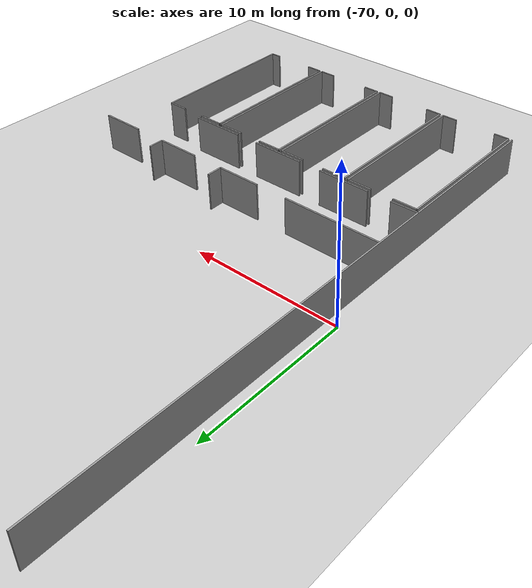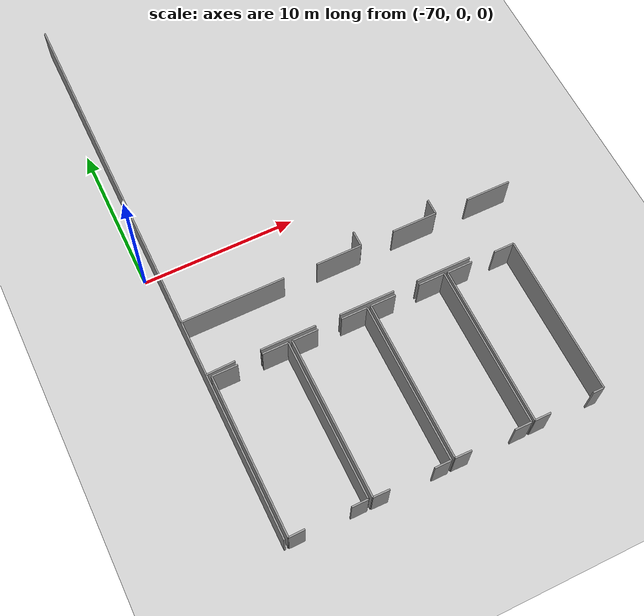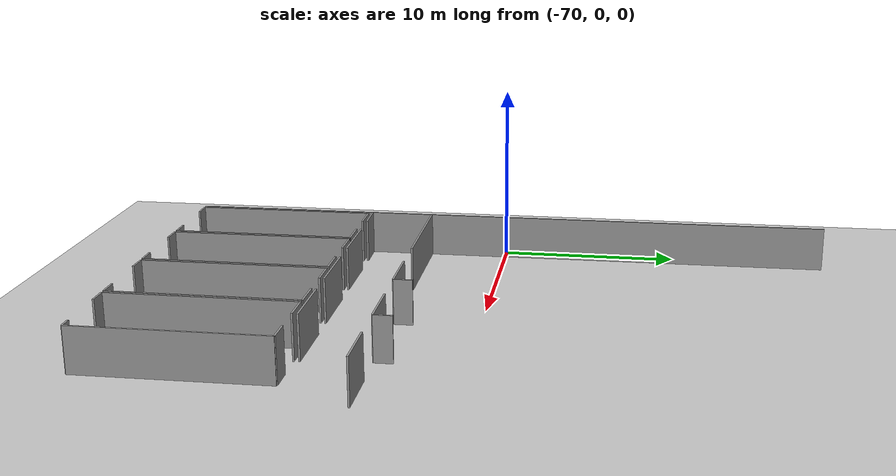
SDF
<sdf version="1.6">
 <world name="default">
  <model name="ground_plane">
   <static>1</static>
   <link name="link">
    <collision name="collision">
     <geometry><plane><normal>0 0 1</normal><size>100 100</size></plane></geometry>
     <surface><friction><ode><mu>100</mu><mu2>50</mu2></ode></friction></surface>
    </collision>
    <visual name="visual">
     <cast_shadows>0</cast_shadows>
     <geometry><plane><normal>0 0 1</normal><size>100 100</size></plane></geometry>
     <material>
      <script><uri>file://media/materials/scripts/gazebo.material</uri><name>Gazebo/Grey</name></script>
     </material>
    </visual>
   </link>
  </model>
  <model name="50055641">
   <static>1</static>
   <link name="Wall_13">
    <collision name="Wall_13_Collision">
     <geometry><box><size>6.66924805444 0.1 2.5</size></box></geometry>
     <pose>3.33462402722 0 1.25 0 0 0</pose>
    </collision>
    <visual name="Wall_13_Visual">
     <pose>3.33462402722 0 1.25 0 0 0</pose>
     <geometry><box><size>6.66924805444 0.1 2.5</size></box></geometry>
     <material>
      <script><uri>file://media/materials/scripts/gazebo.material</uri><name>Gazebo/Grey</name></script>
      <ambient>1 1 1 1</ambient>
     </material>
    </visual>
    <pose>0.0 -23.2500095215 0 0 0 0.0</pose>
   </link>
   <link name="Wall_18">
    <collision name="Wall_18_Collision">
     <geometry><box><size>2.97578996813 0.1 2.5</size></box></geometry>
     <pose>1.48789498407 0 1.25 0 0 0</pose>
    </collision>
    <visual name="Wall_18_Visual">
     <pose>1.48789498407 0 1.25 0 0 0</pose>
     <geometry><box><size>2.97578996813 0.1 2.5</size></box></geometry>
     <material>
      <script><uri>file://media/materials/scripts/gazebo.material</uri><name>Gazebo/Grey</name></script>
      <ambient>1 1 1 1</ambient>
     </material>
    </visual>
    <pose>8.85792634158 -23.2691794995 0 0 0 0.0</pose>
   </link>
   <link name="Wall_19">
    <collision name="Wall_19_Collision">
     <geometry><box><size>1.02718074369 0.1 2.5</size></box></geometry>
     <pose>0.513590371847 0 1.25 0 0 0</pose>
    </collision>
    <visual name="Wall_19_Visual">
     <pose>0.513590371847 0 1.25 0 0 0</pose>
     <geometry><box><size>1.02718074369 0.1 2.5</size></box></geometry>
     <material>
      <script><uri>file://media/materials/scripts/gazebo.material</uri><name>Gazebo/Grey</name></script>
      <ambient>1 1 1 1</ambient>
     </material>
    </visual>
    <pose>11.8337163097 -23.2691794995 0 0 0 1.57079632679</pose>
   </link>
   <link name="Wall_23">
    <collision name="Wall_23_Collision">
     <geometry><box><size>2.94709847783 0.1 2.5</size></box></geometry>
     <pose>1.47354923891 0 1.25 0 0 0</pose>
    </collision>
    <visual name="Wall_23_Visual">
     <pose>1.47354923891 0 1.25 0 0 0</pose>
     <geometry><box><size>2.94709847783 0.1 2.5</size></box></geometry>
     <material>
      <script><uri>file://media/materials/scripts/gazebo.material</uri><name>Gazebo/Grey</name></script>
      <ambient>1 1 1 1</ambient>
     </material>
    </visual>
    <pose>14.0320430626 -23.2596579873 0 0 0 0.0</pose>
   </link>
   <link name="Wall_24">
    <collision name="Wall_24_Collision">
     <geometry><box><size>1.00801076566 0.1 2.5</size></box></geometry>
     <pose>0.504005382828 0 1.25 0 0 0</pose>
    </collision>
    <visual name="Wall_24_Visual">
     <pose>0.504005382828 0 1.25 0 0 0</pose>
     <geometry><box><size>1.00801076566 0.1 2.5</size></box></geometry>
     <material>
      <script><uri>file://media/materials/scripts/gazebo.material</uri><name>Gazebo/Grey</name></script>
      <ambient>1 1 1 1</ambient>
     </material>
    </visual>
    <pose>16.9791415405 -23.2596579873 0 0 0 1.57079632679</pose>
   </link>
   <link name="Wall_28">
    <collision name="Wall_28_Collision">
     <geometry><box><size>2.94760629182 0.1 2.5</size></box></geometry>
     <pose>1.47380314591 0 1.25 0 0 0</pose>
    </collision>
    <visual name="Wall_28_Visual">
     <pose>1.47380314591 0 1.25 0 0 0</pose>
     <geometry><box><size>2.94760629182 0.1 2.5</size></box></geometry>
     <material>
      <script><uri>file://media/materials/scripts/gazebo.material</uri><name>Gazebo/Grey</name></script>
      <ambient>1 1 1 1</ambient>
     </material>
    </visual>
    <pose>19.2008277368 -23.2658787086 0 0 0 0.0</pose>
   </link>
   <link name="Wall_65">
    <collision name="Wall_65_Collision">
     <geometry><box><size>3.58110424152 0.1 2.5</size></box></geometry>
     <pose>1.79055212076 0 1.25 0 0 0</pose>
    </collision>
    <visual name="Wall_65_Visual">
     <pose>1.79055212076 0 1.25 0 0 0</pose>
     <geometry><box><size>3.58110424152 0.1 2.5</size></box></geometry>
     <material>
      <script><uri>file://media/materials/scripts/gazebo.material</uri><name>Gazebo/Grey</name></script>
      <ambient>1 1 1 1</ambient>
     </material>
    </visual>
    <pose>17.3555586589 -26.8581548579 0 0 0 3.14159265359</pose>
   </link>
   <link name="Wall_66">
    <collision name="Wall_66_Collision">
     <geometry><box><size>3.59989335906 0.1 2.5</size></box></geometry>
     <pose>1.79994667953 0 1.25 0 0 0</pose>
    </collision>
    <visual name="Wall_66_Visual">
     <pose>1.79994667953 0 1.25 0 0 0</pose>
     <geometry><box><size>3.59989335906 0.1 2.5</size></box></geometry>
     <material>
      <script><uri>file://media/materials/scripts/gazebo.material</uri><name>Gazebo/Grey</name></script>
      <ambient>1 1 1 1</ambient>
     </material>
    </visual>
    <pose>12.2177506379 -26.8581548579 0 0 0 3.14159265359</pose>
   </link>
   <link name="Wall_67">
    <collision name="Wall_67_Collision">
     <geometry><box><size>3.57691477612 0.1 2.5</size></box></geometry>
     <pose>1.78845738806 0 1.25 0 0 0</pose>
    </collision>
    <visual name="Wall_67_Visual">
     <pose>1.78845738806 0 1.25 0 0 0</pose>
     <geometry><box><size>3.57691477612 0.1 2.5</size></box></geometry>
     <material>
      <script><uri>file://media/materials/scripts/gazebo.material</uri><name>Gazebo/Grey</name></script>
      <ambient>1 1 1 1</ambient>
     </material>
    </visual>
    <pose>7.04401477739 -26.8581548579 0 0 0 3.14159265359</pose>
   </link>
   <link name="Wall_68">
    <collision name="Wall_68_Collision">
     <geometry><box><size>1.84146440723 0.1 2.5</size></box></geometry>
     <pose>0.920732203613 0 1.25 0 0 0</pose>
    </collision>
    <visual name="Wall_68_Visual">
     <pose>0.920732203613 0 1.25 0 0 0</pose>
     <geometry><box><size>1.84146440723 0.1 2.5</size></box></geometry>
     <material>
      <script><uri>file://media/materials/scripts/gazebo.material</uri><name>Gazebo/Grey</name></script>
      <ambient>1 1 1 1</ambient>
     </material>
    </visual>
    <pose>1.84082570554 -26.8581548579 0 0 0 -3.11525391834</pose>
   </link>
   <link name="Wall_178">
    <collision name="Wall_178_Collision">
     <geometry><box><size>10.3222079752 0.1 2.5</size></box></geometry>
     <pose>5.16110398761 0 1.25 0 0 0</pose>
    </collision>
    <visual name="Wall_178_Visual">
     <pose>5.16110398761 0 1.25 0 0 0</pose>
     <geometry><box><size>10.3222079752 0.1 2.5</size></box></geometry>
     <material>
      <script><uri>file://media/materials/scripts/gazebo.material</uri><name>Gazebo/Grey</name></script>
      <ambient>1 1 1 1</ambient>
     </material>
    </visual>
    <pose>15.692721756 -37.4764183879 0 0 0 1.57079632679</pose>
   </link>
   <link name="Wall_179">
    <collision name="Wall_179_Collision">
     <geometry><box><size>1.6644872983 0.1 2.5</size></box></geometry>
     <pose>0.832243649151 0 1.25 0 0 0</pose>
    </collision>
    <visual name="Wall_179_Visual">
     <pose>0.832243649151 0 1.25 0 0 0</pose>
     <geometry><box><size>1.6644872983 0.1 2.5</size></box></geometry>
     <material>
      <script><uri>file://media/materials/scripts/gazebo.material</uri><name>Gazebo/Grey</name></script>
      <ambient>1 1 1 1</ambient>
     </material>
    </visual>
    <pose>15.692721756 -27.1542104127 0 0 0 0.0</pose>
   </link>
   <link name="Wall_180">
    <collision name="Wall_180_Collision">
     <geometry><box><size>1.32463278701 0.1 2.5</size></box></geometry>
     <pose>0.662316393505 0 1.25 0 0 0</pose>
    </collision>
    <visual name="Wall_180_Visual">
     <pose>0.662316393505 0 1.25 0 0 0</pose>
     <geometry><box><size>1.32463278701 0.1 2.5</size></box></geometry>
     <material>
      <script><uri>file://media/materials/scripts/gazebo.material</uri><name>Gazebo/Grey</name></script>
      <ambient>1 1 1 1</ambient>
     </material>
    </visual>
    <pose>18.9182292526 -27.1542104127 0 0 0 0.0</pose>
   </link>
   <link name="Wall_181">
    <collision name="Wall_181_Collision">
     <geometry><box><size>10.3236044637 0.1 2.5</size></box></geometry>
     <pose>5.16180223184 0 1.25 0 0 0</pose>
    </collision>
    <visual name="Wall_181_Visual">
     <pose>5.16180223184 0 1.25 0 0 0</pose>
     <geometry><box><size>10.3236044637 0.1 2.5</size></box></geometry>
     <material>
      <script><uri>file://media/materials/scripts/gazebo.material</uri><name>Gazebo/Grey</name></script>
      <ambient>1 1 1 1</ambient>
     </material>
    </visual>
    <pose>20.2428620396 -27.1542104127 0 0 0 -1.57079632679</pose>
   </link>
   <link name="Wall_182">
    <collision name="Wall_182_Collision">
     <geometry><box><size>0.704591907984 0.1 2.5</size></box></geometry>
     <pose>0.352295953992 0 1.25 0 0 0</pose>
    </collision>
    <visual name="Wall_182_Visual">
     <pose>0.352295953992 0 1.25 0 0 0</pose>
     <geometry><box><size>0.704591907984 0.1 2.5</size></box></geometry>
     <material>
      <script><uri>file://media/materials/scripts/gazebo.material</uri><name>Gazebo/Grey</name></script>
      <ambient>1 1 1 1</ambient>
     </material>
    </visual>
    <pose>20.2428620396 -37.4778148764 0 0 0 3.14159265359</pose>
   </link>
   <link name="Wall_183">
    <collision name="Wall_183_Collision">
     <geometry><box><size>1.03873445064 0.1 2.5</size></box></geometry>
     <pose>0.519367225322 0 1.25 0 0 0</pose>
    </collision>
    <visual name="Wall_183_Visual">
     <pose>0.519367225322 0 1.25 0 0 0</pose>
     <geometry><box><size>1.03873445064 0.1 2.5</size></box></geometry>
     <material>
      <script><uri>file://media/materials/scripts/gazebo.material</uri><name>Gazebo/Grey</name></script>
      <ambient>1 1 1 1</ambient>
     </material>
    </visual>
    <pose>16.7314552679 -37.4778148764 0 0 0 3.14024823983</pose>
   </link>
   <link name="Wall_184">
    <collision name="Wall_184_Collision">
     <geometry><box><size>10.3319833945 0.1 2.5</size></box></geometry>
     <pose>5.16599169724 0 1.25 0 0 0</pose>
    </collision>
    <visual name="Wall_184_Visual">
     <pose>5.16599169724 0 1.25 0 0 0</pose>
     <geometry><box><size>10.3319833945 0.1 2.5</size></box></geometry>
     <material>
      <script><uri>file://media/materials/scripts/gazebo.material</uri><name>Gazebo/Grey</name></script>
      <ambient>1 1 1 1</ambient>
     </material>
    </visual>
    <pose>10.537775013 -37.4572484099 0 0 0 1.57079632679</pose>
   </link>
   <link name="Wall_185">
    <collision name="Wall_185_Collision">
     <geometry><box><size>1.63401845904 0.1 2.5</size></box></geometry>
     <pose>0.817009229519 0 1.25 0 0 0</pose>
    </collision>
    <visual name="Wall_185_Visual">
     <pose>0.817009229519 0 1.25 0 0 0</pose>
     <geometry><box><size>1.63401845904 0.1 2.5</size></box></geometry>
     <material>
      <script><uri>file://media/materials/scripts/gazebo.material</uri><name>Gazebo/Grey</name></script>
      <ambient>1 1 1 1</ambient>
     </material>
    </visual>
    <pose>10.537775013 -27.1252650154 0 0 0 0.0</pose>
   </link>
   <link name="Wall_186">
    <collision name="Wall_186_Collision">
     <geometry><box><size>1.70866711524 0.1 2.5</size></box></geometry>
     <pose>0.854333557618 0 1.25 0 0 0</pose>
    </collision>
    <visual name="Wall_186_Visual">
     <pose>0.854333557618 0 1.25 0 0 0</pose>
     <geometry><box><size>1.70866711524 0.1 2.5</size></box></geometry>
     <material>
      <script><uri>file://media/materials/scripts/gazebo.material</uri><name>Gazebo/Grey</name></script>
      <ambient>1 1 1 1</ambient>
     </material>
    </visual>
    <pose>13.7632825096 -27.1252650154 0 0 0 0.0</pose>
   </link>
   <link name="Wall_187">
    <collision name="Wall_187_Collision">
     <geometry><box><size>10.350772512 0.1 2.5</size></box></geometry>
     <pose>5.17538625601 0 1.25 0 0 0</pose>
    </collision>
    <visual name="Wall_187_Visual">
     <pose>5.17538625601 0 1.25 0 0 0</pose>
     <geometry><box><size>10.350772512 0.1 2.5</size></box></geometry>
     <material>
      <script><uri>file://media/materials/scripts/gazebo.material</uri><name>Gazebo/Grey</name></script>
      <ambient>1 1 1 1</ambient>
     </material>
    </visual>
    <pose>15.4719496249 -27.1252650154 0 0 0 -1.57079632679</pose>
   </link>
   <link name="Wall_188">
    <collision name="Wall_188_Collision">
     <geometry><box><size>1.08811842222 0.1 2.5</size></box></geometry>
     <pose>0.544059211111 0 1.25 0 0 0</pose>
    </collision>
    <visual name="Wall_188_Visual">
     <pose>0.544059211111 0 1.25 0 0 0</pose>
     <geometry><box><size>1.08811842222 0.1 2.5</size></box></geometry>
     <material>
      <script><uri>file://media/materials/scripts/gazebo.material</uri><name>Gazebo/Grey</name></script>
      <ambient>1 1 1 1</ambient>
     </material>
    </visual>
    <pose>15.4719496249 -37.4760375275 0 0 0 3.14159265359</pose>
   </link>
   <link name="Wall_189">
    <collision name="Wall_189_Collision">
     <geometry><box><size>1.06657488458 0.1 2.5</size></box></geometry>
     <pose>0.53328744229 0 1.25 0 0 0</pose>
    </collision>
    <visual name="Wall_189_Visual">
     <pose>0.53328744229 0 1.25 0 0 0</pose>
     <geometry><box><size>1.06657488458 0.1 2.5</size></box></geometry>
     <material>
      <script><uri>file://media/materials/scripts/gazebo.material</uri><name>Gazebo/Grey</name></script>
      <ambient>1 1 1 1</ambient>
     </material>
    </visual>
    <pose>11.6041843873 -37.4760375275 0 0 0 3.1239754288</pose>
   </link>
   <link name="Wall_190">
    <collision name="Wall_190_Collision">
     <geometry><box><size>10.3319833945 0.1 2.5</size></box></geometry>
     <pose>5.16599169724 0 1.25 0 0 0</pose>
    </collision>
    <visual name="Wall_190_Visual">
     <pose>5.16599169724 0 1.25 0 0 0</pose>
     <geometry><box><size>10.3319833945 0.1 2.5</size></box></geometry>
     <material>
      <script><uri>file://media/materials/scripts/gazebo.material</uri><name>Gazebo/Grey</name></script>
      <ambient>1 1 1 1</ambient>
     </material>
    </visual>
    <pose>5.38282827 -37.4572484099 0 0 0 1.57079632679</pose>
   </link>
   <link name="Wall_191">
    <collision name="Wall_191_Collision">
     <geometry><box><size>1.66372557732 0.1 2.5</size></box></geometry>
     <pose>0.831862788661 0 1.25 0 0 0</pose>
    </collision>
    <visual name="Wall_191_Visual">
     <pose>0.831862788661 0 1.25 0 0 0</pose>
     <geometry><box><size>1.66372557732 0.1 2.5</size></box></geometry>
     <material>
      <script><uri>file://media/materials/scripts/gazebo.material</uri><name>Gazebo/Grey</name></script>
      <ambient>1 1 1 1</ambient>
     </material>
    </visual>
    <pose>5.38282827 -27.1252650154 0 0 0 0.0</pose>
   </link>
   <link name="Wall_192">
    <collision name="Wall_192_Collision">
     <geometry><box><size>1.70117685892 0.1 2.5</size></box></geometry>
     <pose>0.850588429458 0 1.25 0 0 0</pose>
    </collision>
    <visual name="Wall_192_Visual">
     <pose>0.850588429458 0 1.25 0 0 0</pose>
     <geometry><box><size>1.70117685892 0.1 2.5</size></box></geometry>
     <material>
      <script><uri>file://media/materials/scripts/gazebo.material</uri><name>Gazebo/Grey</name></script>
      <ambient>1 1 1 1</ambient>
     </material>
    </visual>
    <pose>8.59475174244 -27.1252650154 0 0 0 0.0</pose>
   </link>
   <link name="Wall_193">
    <collision name="Wall_193_Collision">
     <geometry><box><size>10.3511533725 0.1 2.5</size></box></geometry>
     <pose>5.17557668626 0 1.25 0 0 0</pose>
    </collision>
    <visual name="Wall_193_Visual">
     <pose>5.17557668626 0 1.25 0 0 0</pose>
     <geometry><box><size>10.3511533725 0.1 2.5</size></box></geometry>
     <material>
      <script><uri>file://media/materials/scripts/gazebo.material</uri><name>Gazebo/Grey</name></script>
      <ambient>1 1 1 1</ambient>
     </material>
    </visual>
    <pose>10.2959286014 -27.1252650154 0 0 0 -1.57079632679</pose>
   </link>
   <link name="Wall_194">
    <collision name="Wall_194_Collision">
     <geometry><box><size>1.05409488504 0.1 2.5</size></box></geometry>
     <pose>0.527047442522 0 1.25 0 0 0</pose>
    </collision>
    <visual name="Wall_194_Visual">
     <pose>0.527047442522 0 1.25 0 0 0</pose>
     <geometry><box><size>1.05409488504 0.1 2.5</size></box></geometry>
     <material>
      <script><uri>file://media/materials/scripts/gazebo.material</uri><name>Gazebo/Grey</name></script>
      <ambient>1 1 1 1</ambient>
     </material>
    </visual>
    <pose>10.2959286014 -37.4764183879 0 0 0 3.14159265359</pose>
   </link>
   <link name="Wall_195">
    <collision name="Wall_195_Collision">
     <geometry><box><size>1.05376145515 0.1 2.5</size></box></geometry>
     <pose>0.526880727574 0 1.25 0 0 0</pose>
    </collision>
    <visual name="Wall_195_Visual">
     <pose>0.526880727574 0 1.25 0 0 0</pose>
     <geometry><box><size>1.05376145515 0.1 2.5</size></box></geometry>
     <material>
      <script><uri>file://media/materials/scripts/gazebo.material</uri><name>Gazebo/Grey</name></script>
      <ambient>1 1 1 1</ambient>
     </material>
    </visual>
    <pose>6.43641534106 -37.4764183879 0 0 0 3.1233996978</pose>
   </link>
   <link name="Wall_196">
    <collision name="Wall_196_Collision">
     <geometry><box><size>10.3312216735 0.1 2.5</size></box></geometry>
     <pose>5.16561083675 0 1.25 0 0 0</pose>
    </collision>
    <visual name="Wall_196_Visual">
     <pose>5.16561083675 0 1.25 0 0 0</pose>
     <geometry><box><size>10.3312216735 0.1 2.5</size></box></geometry>
     <material>
      <script><uri>file://media/materials/scripts/gazebo.material</uri><name>Gazebo/Grey</name></script>
      <ambient>1 1 1 1</ambient>
     </material>
    </visual>
    <pose>0.243369853623 -37.4594066194 0 0 0 1.57079632679</pose>
   </link>
   <link name="Wall_197">
    <collision name="Wall_197_Collision">
     <geometry><box><size>1.64531732027 0.1 2.5</size></box></geometry>
     <pose>0.822658660133 0 1.25 0 0 0</pose>
    </collision>
    <visual name="Wall_197_Visual">
     <pose>0.822658660133 0 1.25 0 0 0</pose>
     <geometry><box><size>1.64531732027 0.1 2.5</size></box></geometry>
     <material>
      <script><uri>file://media/materials/scripts/gazebo.material</uri><name>Gazebo/Grey</name></script>
      <ambient>1 1 1 1</ambient>
     </material>
    </visual>
    <pose>0.243369853623 -27.1281849459 0 0 0 0.0</pose>
   </link>
   <link name="Wall_198">
    <collision name="Wall_198_Collision">
     <geometry><box><size>1.67781741548 0.1 2.5</size></box></geometry>
     <pose>0.83890870774 0 1.25 0 0 0</pose>
    </collision>
    <visual name="Wall_198_Visual">
     <pose>0.83890870774 0 1.25 0 0 0</pose>
     <geometry><box><size>1.67781741548 0.1 2.5</size></box></geometry>
     <material>
      <script><uri>file://media/materials/scripts/gazebo.material</uri><name>Gazebo/Grey</name></script>
      <ambient>1 1 1 1</ambient>
     </material>
    </visual>
    <pose>3.44881869771 -27.1281849459 0 0 0 0.0</pose>
   </link>
   <link name="Wall_199">
    <collision name="Wall_199_Collision">
     <geometry><box><size>10.3144638119 0.1 2.5</size></box></geometry>
     <pose>5.15723190595 0 1.25 0 0 0</pose>
    </collision>
    <visual name="Wall_199_Visual">
     <pose>5.15723190595 0 1.25 0 0 0</pose>
     <geometry><box><size>10.3144638119 0.1 2.5</size></box></geometry>
     <material>
      <script><uri>file://media/materials/scripts/gazebo.material</uri><name>Gazebo/Grey</name></script>
      <ambient>1 1 1 1</ambient>
     </material>
    </visual>
    <pose>5.12663611319 -27.1281849459 0 0 0 -1.57079632679</pose>
   </link>
   <link name="Wall_200">
    <collision name="Wall_200_Collision">
     <geometry><box><size>1.0434307913 0.1 2.5</size></box></geometry>
     <pose>0.521715395651 0 1.25 0 0 0</pose>
    </collision>
    <visual name="Wall_200_Visual">
     <pose>0.521715395651 0 1.25 0 0 0</pose>
     <geometry><box><size>1.0434307913 0.1 2.5</size></box></geometry>
     <material>
      <script><uri>file://media/materials/scripts/gazebo.material</uri><name>Gazebo/Grey</name></script>
      <ambient>1 1 1 1</ambient>
     </material>
    </visual>
    <pose>5.12663611319 -37.4426487578 0 0 0 3.14159265359</pose>
   </link>
   <link name="Wall_201">
    <collision name="Wall_201_Collision">
     <geometry><box><size>1.01018102899 0.1 2.5</size></box></geometry>
     <pose>0.505090514497 0 1.25 0 0 0</pose>
    </collision>
    <visual name="Wall_201_Visual">
     <pose>0.505090514497 0 1.25 0 0 0</pose>
     <geometry><box><size>1.01018102899 0.1 2.5</size></box></geometry>
     <material>
      <script><uri>file://media/materials/scripts/gazebo.material</uri><name>Gazebo/Grey</name></script>
      <ambient>1 1 1 1</ambient>
     </material>
    </visual>
    <pose>1.25341187523 -37.4426487578 0 0 0 -3.12500292381</pose>
   </link>
   <link name="Wall_414">
    <collision name="Wall_414_Collision">
     <geometry><box><size>37.4844164583 0.1 2.5</size></box></geometry>
     <pose>18.7422082291 0 1.25 0 0 0</pose>
    </collision>
    <visual name="Wall_414_Visual">
     <pose>18.7422082291 0 1.25 0 0 0</pose>
     <geometry><box><size>37.4844164583 0.1 2.5</size></box></geometry>
     <material>
      <script><uri>file://media/materials/scripts/gazebo.material</uri><name>Gazebo/Grey</name></script>
      <ambient>1 1 1 1</ambient>
     </material>
    </visual>
    <pose>0.0 -37.4844164583 0 0 0 1.57079632679</pose>
   </link>
   <pose>-69.25 18.7344164583 0 0 0 0</pose>
  </model>
 </world>
</sdf>
